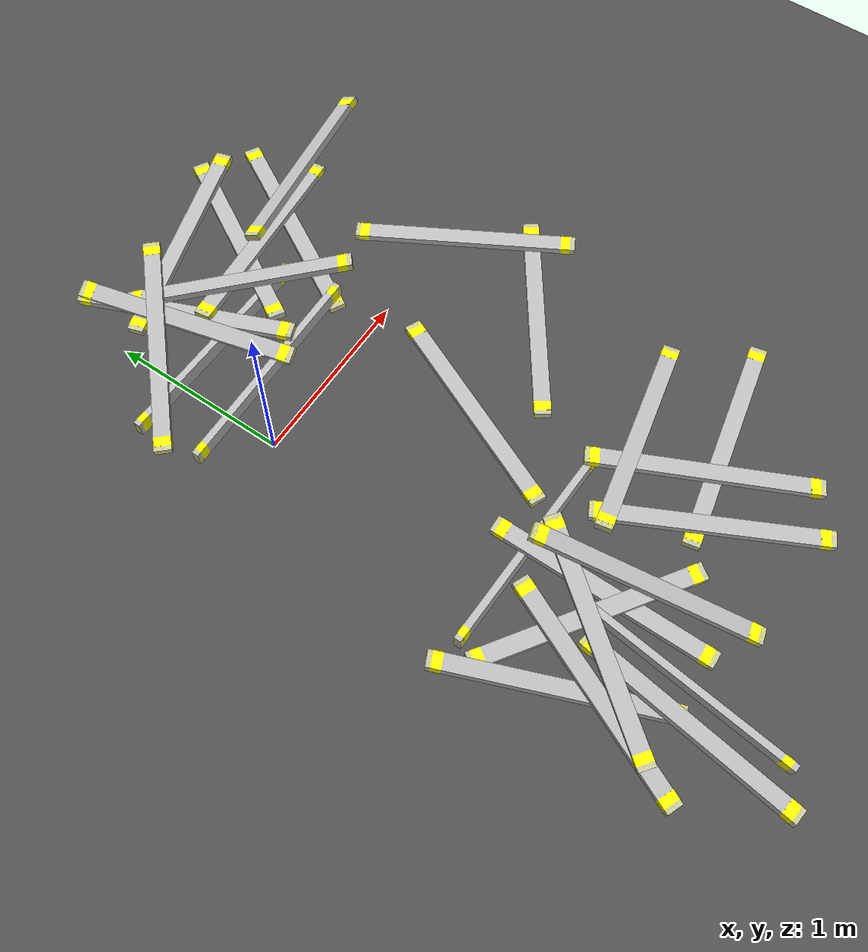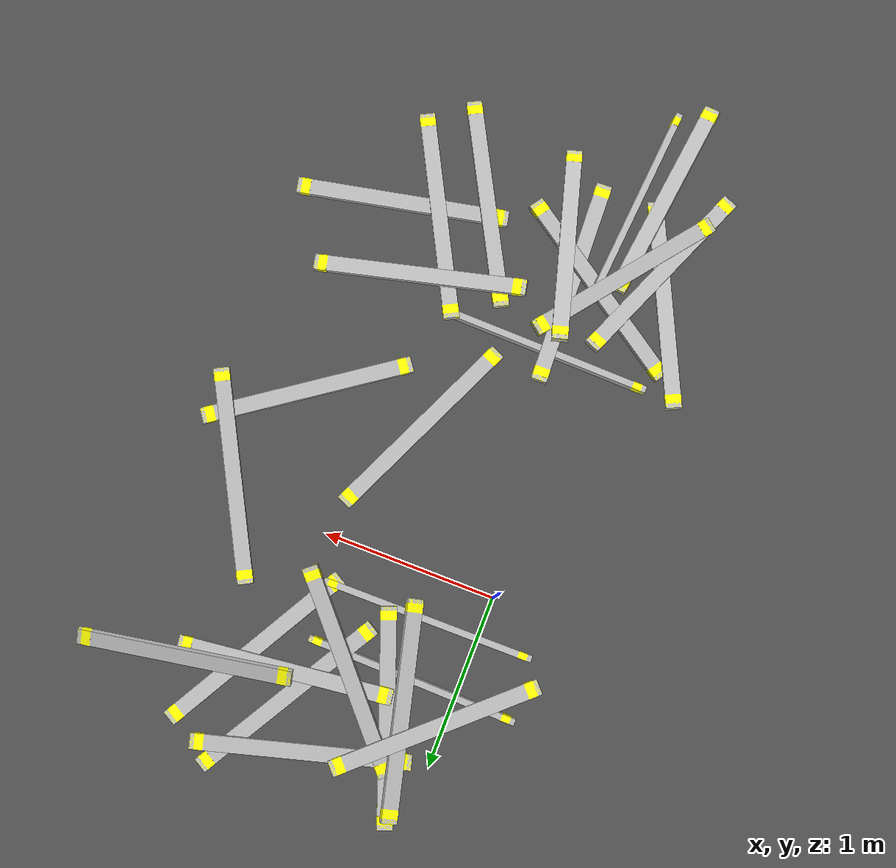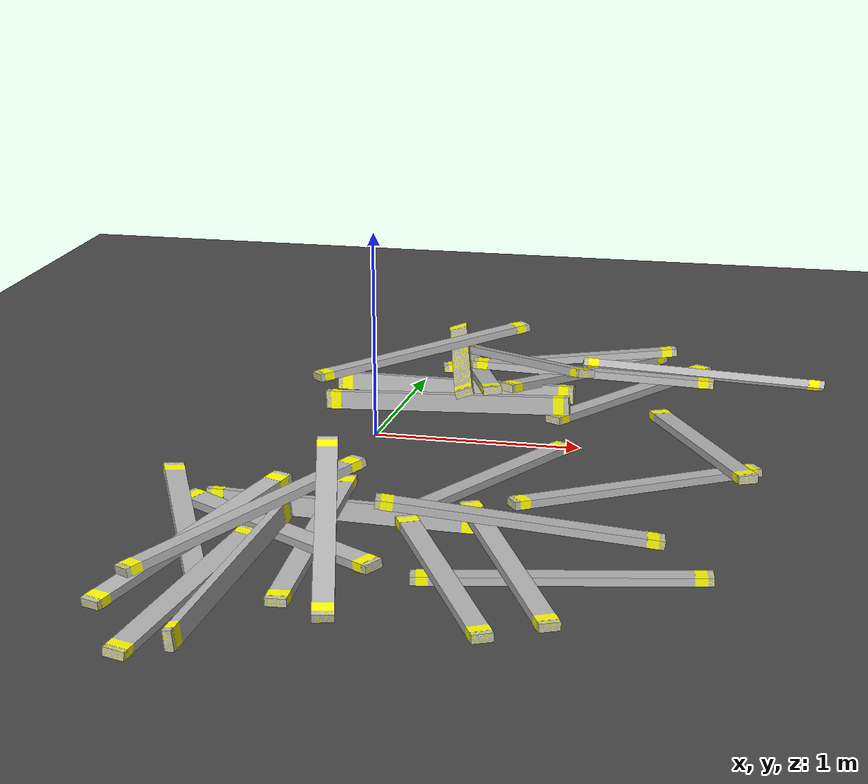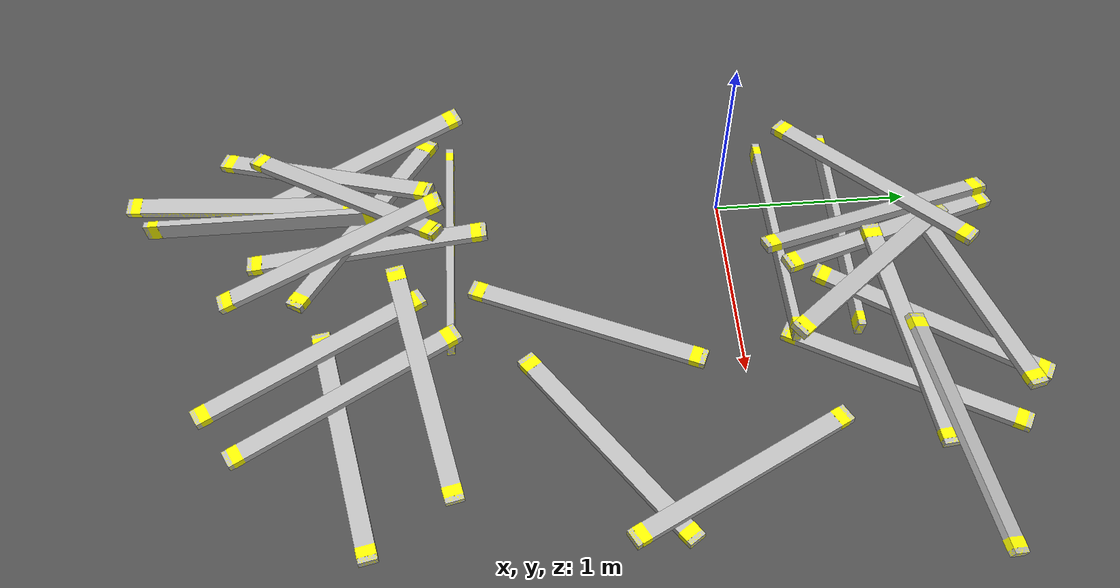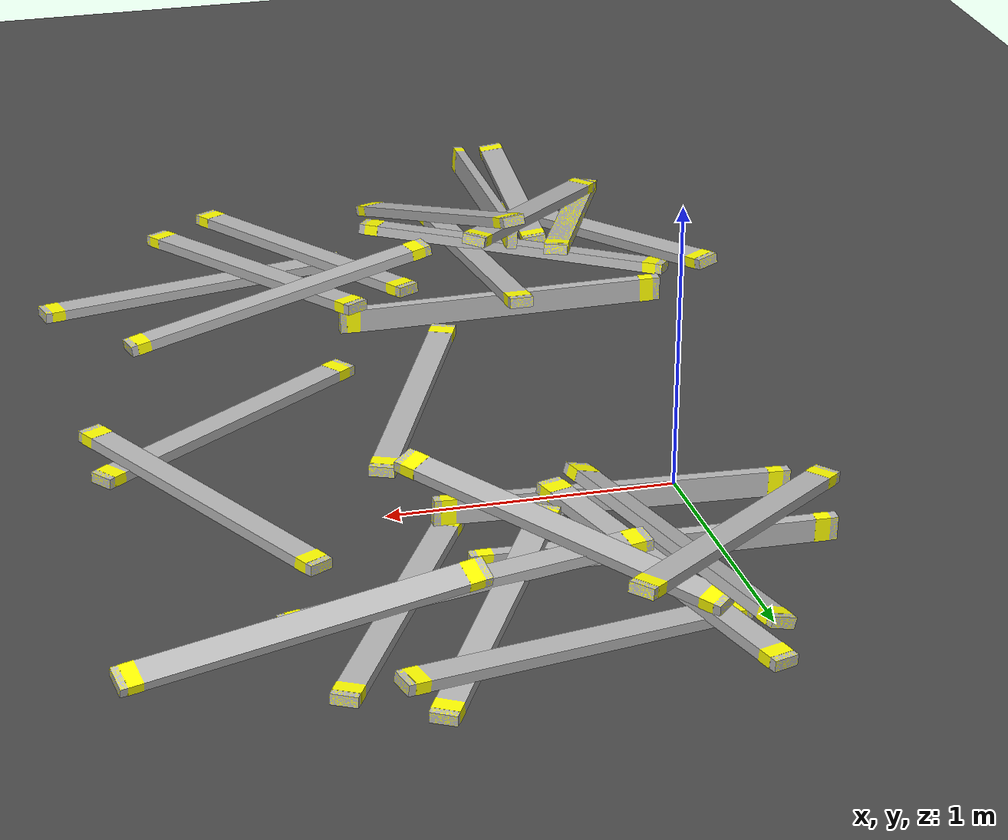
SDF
<sdf version="1.6">
 <world name="default">
  <model name="ground_plane">
   <static>1</static>
   <link name="link">
    <collision name="collision">
     <geometry><plane><normal>0 0 1</normal><size>100 100</size></plane></geometry>
     <surface><friction><ode><mu>100</mu><mu2>50</mu2></ode></friction></surface>
    </collision>
    <visual name="visual">
     <cast_shadows>0</cast_shadows>
     <geometry><plane><normal>0 0 1</normal><size>100 100</size></plane></geometry>
     <material>
      <script><uri>file://media/materials/scripts/gazebo.material</uri><name>Gazebo/Grey</name></script>
     </material>
    </visual>
   </link>
  </model>
  <model name="asphalt_plane">
   <static>1</static>
   <link name="link">
    <collision name="collision"><geometry><box><size>20 20 0.1</size></box></geometry></collision>
    <visual name="visual">
     <cast_shadows>0</cast_shadows>
     <geometry><box><size>20 20 0.1</size></box></geometry>
     <material>
      <script>
       <uri>model://asphalt_plane/materials/scripts</uri>
       <uri>model://asphalt_plane/materials/textures</uri>
       <name>vrc/asphalt</name>
      </script>
     </material>
    </visual>
   </link>
   <pose>0.013797 -0.037077 0 0 -0 0</pose>
  </model>
  <model name="lumber_2x4x48">
   <link name="link">
    <inertial>
     <mass>1.4111</mass>
     <inertia><ixx>0.0011</ixx><ixy>0</ixy><ixz>0</ixz><iyy>0.1771</iyy><iyz>0</iyz><izz>0.1763</izz></inertia>
    </inertial>
    <collision name="collision">
     <geometry><box><size>1.2192 0.038 0.0888</size></box></geometry>
     <surface>
      <bounce><restitution_coefficient>0.01</restitution_coefficient><threshold>5</threshold></bounce>
      <friction><ode><mu>5</mu><mu2>5</mu2></ode></friction>
      <contact>
       <ode>
        <soft_cfm>0.001</soft_cfm>
        <kp>10000</kp>
        <kd>1000</kd>
        <max_vel>0.01</max_vel>
        <min_depth>0.001</min_depth>
       </ode>
      </contact>
     </surface>
    </collision>
    <visual name="visual">
     <geometry><mesh><uri>model://drc_practice_2x4/meshes/2x4x48.dae</uri><scale>1 1 1</scale></mesh></geometry>
    </visual>
   </link>
   <pose>0.29585 0.246908 0.112093 -0.012282 -0.031437 0.006581</pose>
  </model>
  <model name="lumber_2x4x48_clone_1">
   <link name="link">
    <inertial>
     <mass>1.4111</mass>
     <inertia><ixx>0.0011</ixx><ixy>0</ixy><ixz>0</ixz><iyy>0.1771</iyy><iyz>0</iyz><izz>0.1763</izz></inertia>
    </inertial>
    <collision name="collision">
     <geometry><box><size>1.2192 0.038 0.0888</size></box></geometry>
     <surface>
      <bounce><restitution_coefficient>0.01</restitution_coefficient><threshold>5</threshold></bounce>
      <friction><ode><mu>5</mu><mu2>5</mu2></ode></friction>
      <contact>
       <ode>
        <soft_cfm>0.001</soft_cfm>
        <kp>10000</kp>
        <kd>1000</kd>
        <max_vel>0.01</max_vel>
        <min_depth>0.001</min_depth>
       </ode>
      </contact>
     </surface>
    </collision>
    <visual name="visual">
     <geometry><mesh><uri>model://drc_practice_2x4/meshes/2x4x48.dae</uri><scale>1 1 1</scale></mesh></geometry>
    </visual>
   </link>
   <pose>0.259701 0.58307 0.09062 -0.085679 4.7e-05 -0.019412</pose>
  </model>
  <model name="lumber_2x4x48_clone_3_clone_0">
   <link name="link">
    <inertial>
     <mass>1.4111</mass>
     <inertia><ixx>0.0011</ixx><ixy>0</ixy><ixz>0</ixz><iyy>0.1771</iyy><iyz>0</iyz><izz>0.1763</izz></inertia>
    </inertial>
    <collision name="collision">
     <geometry><box><size>1.2192 0.038 0.0888</size></box></geometry>
     <surface>
      <bounce><restitution_coefficient>0.01</restitution_coefficient><threshold>5</threshold></bounce>
      <friction><ode><mu>5</mu><mu2>5</mu2></ode></friction>
      <contact>
       <ode>
        <soft_cfm>0.001</soft_cfm>
        <kp>10000</kp>
        <kd>1000</kd>
        <max_vel>0.01</max_vel>
        <min_depth>0.001</min_depth>
       </ode>
      </contact>
     </surface>
    </collision>
    <visual name="visual">
     <geometry><mesh><uri>model://drc_practice_2x4/meshes/2x4x48.dae</uri><scale>1 1 1</scale></mesh></geometry>
    </visual>
   </link>
   <pose>0.047335 0.775799 0.217492 1.53158 -0.085243 0.736242</pose>
  </model>
  <model name="lumber_2x4x48_clone_3_clone_0_clone_0_clone_0">
   <link name="link">
    <inertial>
     <mass>1.4111</mass>
     <inertia><ixx>0.0011</ixx><ixy>0</ixy><ixz>0</ixz><iyy>0.1771</iyy><iyz>0</iyz><izz>0.1763</izz></inertia>
    </inertial>
    <collision name="collision">
     <geometry><box><size>1.2192 0.038 0.0888</size></box></geometry>
     <surface>
      <bounce><restitution_coefficient>0.01</restitution_coefficient><threshold>5</threshold></bounce>
      <friction><ode><mu>5</mu><mu2>5</mu2></ode></friction>
      <contact>
       <ode>
        <soft_cfm>0.001</soft_cfm>
        <kp>10000</kp>
        <kd>1000</kd>
        <max_vel>0.01</max_vel>
        <min_depth>0.001</min_depth>
       </ode>
      </contact>
     </surface>
    </collision>
    <visual name="visual">
     <geometry><mesh><uri>model://drc_practice_2x4/meshes/2x4x48.dae</uri><scale>1 1 1</scale></mesh></geometry>
    </visual>
   </link>
   <pose>0.064118 -1.82445 0.150234 1.45208 0.00049 2.5477</pose>
  </model>
  <model name="lumber_2x4x48_clone_0_clone_0">
   <link name="link">
    <inertial>
     <mass>1.4111</mass>
     <inertia><ixx>0.0011</ixx><ixy>0</ixy><ixz>0</ixz><iyy>0.1771</iyy><iyz>0</iyz><izz>0.1763</izz></inertia>
    </inertial>
    <collision name="collision">
     <geometry><box><size>1.2192 0.038 0.0888</size></box></geometry>
     <surface>
      <bounce><restitution_coefficient>0.01</restitution_coefficient><threshold>5</threshold></bounce>
      <friction><ode><mu>5</mu><mu2>5</mu2></ode></friction>
      <contact>
       <ode>
        <soft_cfm>0.001</soft_cfm>
        <kp>10000</kp>
        <kd>1000</kd>
        <max_vel>0.01</max_vel>
        <min_depth>0.001</min_depth>
       </ode>
      </contact>
     </surface>
    </collision>
    <visual name="visual">
     <geometry><mesh><uri>model://drc_practice_2x4/meshes/2x4x48.dae</uri><scale>1 1 1</scale></mesh></geometry>
    </visual>
   </link>
   <pose>0.225786 -1.39994 0.10392 -0.024248 0.020138 -0.022762</pose>
  </model>
  <model name="lumber_2x4x48_clone_3_clone_0_clone_1_clone_clone">
   <link name="link">
    <inertial>
     <mass>1.4111</mass>
     <inertia><ixx>0.0011</ixx><ixy>0</ixy><ixz>0</ixz><iyy>0.1771</iyy><iyz>0</iyz><izz>0.1763</izz></inertia>
    </inertial>
    <collision name="collision">
     <geometry><box><size>1.2192 0.038 0.0888</size></box></geometry>
     <surface>
      <bounce><restitution_coefficient>0.01</restitution_coefficient><threshold>5</threshold></bounce>
      <friction><ode><mu>5</mu><mu2>5</mu2></ode></friction>
      <contact>
       <ode>
        <soft_cfm>0.001</soft_cfm>
        <kp>10000</kp>
        <kd>1000</kd>
        <max_vel>0.01</max_vel>
        <min_depth>0.001</min_depth>
       </ode>
      </contact>
     </surface>
    </collision>
    <visual name="visual">
     <geometry><mesh><uri>model://drc_practice_2x4/meshes/2x4x48.dae</uri><scale>1 1 1</scale></mesh></geometry>
    </visual>
   </link>
   <pose>0.036025 -2.34756 0.156878 -0.07363 -0.10351 1.49005</pose>
  </model>
  <model name="lumber_2x4x48_clone_3_clone_0_clone_clone_0">
   <link name="link">
    <inertial>
     <mass>1.4111</mass>
     <inertia><ixx>0.0011</ixx><ixy>0</ixy><ixz>0</ixz><iyy>0.1771</iyy><iyz>0</iyz><izz>0.1763</izz></inertia>
    </inertial>
    <collision name="collision">
     <geometry><box><size>1.2192 0.038 0.0888</size></box></geometry>
     <surface>
      <bounce><restitution_coefficient>0.01</restitution_coefficient><threshold>5</threshold></bounce>
      <friction><ode><mu>5</mu><mu2>5</mu2></ode></friction>
      <contact>
       <ode>
        <soft_cfm>0.001</soft_cfm>
        <kp>10000</kp>
        <kd>1000</kd>
        <max_vel>0.01</max_vel>
        <min_depth>0.001</min_depth>
       </ode>
      </contact>
     </surface>
    </collision>
    <visual name="visual">
     <geometry><mesh><uri>model://drc_practice_2x4/meshes/2x4x48.dae</uri><scale>1 1 1</scale></mesh></geometry>
    </visual>
   </link>
   <pose>1.39218 -0.712525 0.067433 1.56623 0.000289 0.613647</pose>
  </model>
  <model name="lumber_2x4x48_clone_3_clone_0_clone_1_clone_0">
   <link name="link">
    <inertial>
     <mass>1.4111</mass>
     <inertia><ixx>0.0011</ixx><ixy>0</ixy><ixz>0</ixz><iyy>0.1771</iyy><iyz>0</iyz><izz>0.1763</izz></inertia>
    </inertial>
    <collision name="collision">
     <geometry><box><size>1.2192 0.038 0.0888</size></box></geometry>
     <surface>
      <bounce><restitution_coefficient>0.01</restitution_coefficient><threshold>5</threshold></bounce>
      <friction><ode><mu>5</mu><mu2>5</mu2></ode></friction>
      <contact>
       <ode>
        <soft_cfm>0.001</soft_cfm>
        <kp>10000</kp>
        <kd>1000</kd>
        <max_vel>0.01</max_vel>
        <min_depth>0.001</min_depth>
       </ode>
      </contact>
     </surface>
    </collision>
    <visual name="visual">
     <geometry><mesh><uri>model://drc_practice_2x4/meshes/2x4x48.dae</uri><scale>1 1 1</scale></mesh></geometry>
    </visual>
   </link>
   <pose>0.250581 0.756664 0.190247 1.27893 -0.005552 1.81854</pose>
  </model>
  <model name="lumber_2x4x48_clone_3_clone_0_clone_1_clone_1">
   <link name="link">
    <inertial>
     <mass>1.4111</mass>
     <inertia><ixx>0.0011</ixx><ixy>0</ixy><ixz>0</ixz><iyy>0.1771</iyy><iyz>0</iyz><izz>0.1763</izz></inertia>
    </inertial>
    <collision name="collision">
     <geometry><box><size>1.2192 0.038 0.0888</size></box></geometry>
     <surface>
      <bounce><restitution_coefficient>0.01</restitution_coefficient><threshold>5</threshold></bounce>
      <friction><ode><mu>5</mu><mu2>5</mu2></ode></friction>
      <contact>
       <ode>
        <soft_cfm>0.001</soft_cfm>
        <kp>10000</kp>
        <kd>1000</kd>
        <max_vel>0.01</max_vel>
        <min_depth>0.001</min_depth>
       </ode>
      </contact>
     </surface>
    </collision>
    <visual name="visual">
     <geometry><mesh><uri>model://drc_practice_2x4/meshes/2x4x48.dae</uri><scale>1 1 1</scale></mesh></geometry>
    </visual>
   </link>
   <pose>-0.111914 -2.46318 0.110562 -1.71437 0.060344 -1.69281</pose>
  </model>
  <model name="lumber_2x4x48_clone_3_clone_0_clone_1_clone_2">
   <link name="link">
    <inertial>
     <mass>1.4111</mass>
     <inertia><ixx>0.0011</ixx><ixy>0</ixy><ixz>0</ixz><iyy>0.1771</iyy><iyz>0</iyz><izz>0.1763</izz></inertia>
    </inertial>
    <collision name="collision">
     <geometry><box><size>1.2192 0.038 0.0888</size></box></geometry>
     <surface>
      <bounce><restitution_coefficient>0.01</restitution_coefficient><threshold>5</threshold></bounce>
      <friction><ode><mu>5</mu><mu2>5</mu2></ode></friction>
      <contact>
       <ode>
        <soft_cfm>0.001</soft_cfm>
        <kp>10000</kp>
        <kd>1000</kd>
        <max_vel>0.01</max_vel>
        <min_depth>0.001</min_depth>
       </ode>
      </contact>
     </surface>
    </collision>
    <visual name="visual">
     <geometry><mesh><uri>model://drc_practice_2x4/meshes/2x4x48.dae</uri><scale>1 1 1</scale></mesh></geometry>
    </visual>
   </link>
   <pose>0.217807 -1.81808 0.124817 -1.56243 0.095363 -1.53476</pose>
  </model>
  <model name="lumber_2x4x48_clone_3_clone_0_clone_clone_0_clone_0_clone">
   <link name="link">
    <inertial>
     <mass>1.4111</mass>
     <inertia><ixx>0.0011</ixx><ixy>0</ixy><ixz>0</ixz><iyy>0.1771</iyy><iyz>0</iyz><izz>0.1763</izz></inertia>
    </inertial>
    <collision name="collision">
     <geometry><box><size>1.2192 0.038 0.0888</size></box></geometry>
     <surface>
      <bounce><restitution_coefficient>0.01</restitution_coefficient><threshold>5</threshold></bounce>
      <friction><ode><mu>5</mu><mu2>5</mu2></ode></friction>
      <contact>
       <ode>
        <soft_cfm>0.001</soft_cfm>
        <kp>10000</kp>
        <kd>1000</kd>
        <max_vel>0.01</max_vel>
        <min_depth>0.001</min_depth>
       </ode>
      </contact>
     </surface>
    </collision>
    <visual name="visual">
     <geometry><mesh><uri>model://drc_practice_2x4/meshes/2x4x48.dae</uri><scale>1 1 1</scale></mesh></geometry>
    </visual>
   </link>
   <pose>0.596829 0.665024 0.229327 -1.73511 -0.131309 -0.850062</pose>
  </model>
  <model name="lumber_2x4x48_clone_3_clone_0_clone_clone_0_clone_0_clone_0">
   <link name="link">
    <inertial>
     <mass>1.4111</mass>
     <inertia><ixx>0.0011</ixx><ixy>0</ixy><ixz>0</ixz><iyy>0.1771</iyy><iyz>0</iyz><izz>0.1763</izz></inertia>
    </inertial>
    <collision name="collision">
     <geometry><box><size>1.2192 0.038 0.0888</size></box></geometry>
     <surface>
      <bounce><restitution_coefficient>0.01</restitution_coefficient><threshold>5</threshold></bounce>
      <friction><ode><mu>5</mu><mu2>5</mu2></ode></friction>
      <contact>
       <ode>
        <soft_cfm>0.001</soft_cfm>
        <kp>10000</kp>
        <kd>1000</kd>
        <max_vel>0.01</max_vel>
        <min_depth>0.001</min_depth>
       </ode>
      </contact>
     </surface>
    </collision>
    <visual name="visual">
     <geometry><mesh><uri>model://drc_practice_2x4/meshes/2x4x48.dae</uri><scale>1 1 1</scale></mesh></geometry>
    </visual>
   </link>
   <pose>0.319393 -1.98517 0.243854 -1.58939 0.293469 -1.31319</pose>
  </model>
  <model name="lumber_2x4x48_clone_3_clone_0_clone_clone_0_clone_0_clone_4">
   <link name="link">
    <inertial>
     <mass>1.4111</mass>
     <inertia><ixx>0.0011</ixx><ixy>0</ixy><ixz>0</ixz><iyy>0.1771</iyy><iyz>0</iyz><izz>0.1763</izz></inertia>
    </inertial>
    <collision name="collision">
     <geometry><box><size>1.2192 0.038 0.0888</size></box></geometry>
     <surface>
      <bounce><restitution_coefficient>0.01</restitution_coefficient><threshold>5</threshold></bounce>
      <friction><ode><mu>5</mu><mu2>5</mu2></ode></friction>
      <contact>
       <ode>
        <soft_cfm>0.001</soft_cfm>
        <kp>10000</kp>
        <kd>1000</kd>
        <max_vel>0.01</max_vel>
        <min_depth>0.001</min_depth>
       </ode>
      </contact>
     </surface>
    </collision>
    <visual name="visual">
     <geometry><mesh><uri>model://drc_practice_2x4/meshes/2x4x48.dae</uri><scale>1 1 1</scale></mesh></geometry>
    </visual>
   </link>
   <pose>1.05565 -1.91231 0.112859 -1.57771 0.074404 -1.09096</pose>
  </model>
  <model name="lumber_2x4x48_clone_3_clone_0_clone_clone_0_clone_0_clone_5">
   <link name="link">
    <inertial>
     <mass>1.4111</mass>
     <inertia><ixx>0.0011</ixx><ixy>0</ixy><ixz>0</ixz><iyy>0.1771</iyy><iyz>0</iyz><izz>0.1763</izz></inertia>
    </inertial>
    <collision name="collision">
     <geometry><box><size>1.2192 0.038 0.0888</size></box></geometry>
     <surface>
      <bounce><restitution_coefficient>0.01</restitution_coefficient><threshold>5</threshold></bounce>
      <friction><ode><mu>5</mu><mu2>5</mu2></ode></friction>
      <contact>
       <ode>
        <soft_cfm>0.001</soft_cfm>
        <kp>10000</kp>
        <kd>1000</kd>
        <max_vel>0.01</max_vel>
        <min_depth>0.001</min_depth>
       </ode>
      </contact>
     </surface>
    </collision>
    <visual name="visual">
     <geometry><mesh><uri>model://drc_practice_2x4/meshes/2x4x48.dae</uri><scale>1 1 1</scale></mesh></geometry>
    </visual>
   </link>
   <pose>1.59697 -0.113217 0.090621 -1.56748 -0.03751 -1.08254</pose>
  </model>
  <model name="lumber_2x4x48_clone_3_clone_0_clone_clone_0_clone_0_clone_8">
   <link name="link">
    <inertial>
     <mass>1.4111</mass>
     <inertia><ixx>0.0011</ixx><ixy>0</ixy><ixz>0</ixz><iyy>0.1771</iyy><iyz>0</iyz><izz>0.1763</izz></inertia>
    </inertial>
    <collision name="collision">
     <geometry><box><size>1.2192 0.038 0.0888</size></box></geometry>
     <surface>
      <bounce><restitution_coefficient>0.01</restitution_coefficient><threshold>5</threshold></bounce>
      <friction><ode><mu>5</mu><mu2>5</mu2></ode></friction>
      <contact>
       <ode>
        <soft_cfm>0.001</soft_cfm>
        <kp>10000</kp>
        <kd>1000</kd>
        <max_vel>0.01</max_vel>
        <min_depth>0.001</min_depth>
       </ode>
      </contact>
     </surface>
    </collision>
    <visual name="visual">
     <geometry><mesh><uri>model://drc_practice_2x4/meshes/2x4x48.dae</uri><scale>1 1 1</scale></mesh></geometry>
    </visual>
   </link>
   <pose>0.825519 -2.07878 0.101122 1.5869 0.05327 -1.08205</pose>
  </model>
  <model name="lumber_2x4x48_clone_3_clone_0_clone_clone_0_clone_0_clone_0_clone_0">
   <link name="link">
    <inertial>
     <mass>1.4111</mass>
     <inertia><ixx>0.0011</ixx><ixy>0</ixy><ixz>0</ixz><iyy>0.1771</iyy><iyz>0</iyz><izz>0.1763</izz></inertia>
    </inertial>
    <collision name="collision">
     <geometry><box><size>1.2192 0.038 0.0888</size></box></geometry>
     <surface>
      <bounce><restitution_coefficient>0.01</restitution_coefficient><threshold>5</threshold></bounce>
      <friction><ode><mu>5</mu><mu2>5</mu2></ode></friction>
      <contact>
       <ode>
        <soft_cfm>0.001</soft_cfm>
        <kp>10000</kp>
        <kd>1000</kd>
        <max_vel>0.01</max_vel>
        <min_depth>0.001</min_depth>
       </ode>
      </contact>
     </surface>
    </collision>
    <visual name="visual">
     <geometry><mesh><uri>model://drc_practice_2x4/meshes/2x4x48.dae</uri><scale>1 1 1</scale></mesh></geometry>
    </visual>
   </link>
   <pose>-0.312642 -1.88196 0.146258 -1.65236 0.125701 -1.15297</pose>
  </model>
  <model name="lumber_2x4x48_clone_3_clone_0_clone_clone_0_clone_0_clone_10">
   <link name="link">
    <inertial>
     <mass>1.4111</mass>
     <inertia><ixx>0.0011</ixx><ixy>0</ixy><ixz>0</ixz><iyy>0.1771</iyy><iyz>0</iyz><izz>0.1763</izz></inertia>
    </inertial>
    <collision name="collision">
     <geometry><box><size>1.2192 0.038 0.0888</size></box></geometry>
     <surface>
      <bounce><restitution_coefficient>0.01</restitution_coefficient><threshold>5</threshold></bounce>
      <friction><ode><mu>5</mu><mu2>5</mu2></ode></friction>
      <contact>
       <ode>
        <soft_cfm>0.001</soft_cfm>
        <kp>10000</kp>
        <kd>1000</kd>
        <max_vel>0.01</max_vel>
        <min_depth>0.001</min_depth>
       </ode>
      </contact>
     </surface>
    </collision>
    <visual name="visual">
     <geometry><mesh><uri>model://drc_practice_2x4/meshes/2x4x48.dae</uri><scale>1 1 1</scale></mesh></geometry>
    </visual>
   </link>
   <pose>0.312975 0.825289 0.133008 -1.53959 -0.082924 -1.22089</pose>
  </model>
  <model name="lumber_2x4x48_clone_3_clone_0_clone_clone_0_clone_0_clone_11">
   <link name="link">
    <inertial>
     <mass>1.4111</mass>
     <inertia><ixx>0.0011</ixx><ixy>0</ixy><ixz>0</ixz><iyy>0.1771</iyy><iyz>0</iyz><izz>0.1763</izz></inertia>
    </inertial>
    <collision name="collision">
     <geometry><box><size>1.2192 0.038 0.0888</size></box></geometry>
     <surface>
      <bounce><restitution_coefficient>0.01</restitution_coefficient><threshold>5</threshold></bounce>
      <friction><ode><mu>5</mu><mu2>5</mu2></ode></friction>
      <contact>
       <ode>
        <soft_cfm>0.001</soft_cfm>
        <kp>10000</kp>
        <kd>1000</kd>
        <max_vel>0.01</max_vel>
        <min_depth>0.001</min_depth>
       </ode>
      </contact>
     </surface>
    </collision>
    <visual name="visual">
     <geometry><mesh><uri>model://drc_practice_2x4/meshes/2x4x48.dae</uri><scale>1 1 1</scale></mesh></geometry>
    </visual>
   </link>
   <pose>-0.236006 -2.03726 0.166892 1.55441 0.163117 -1.95823</pose>
  </model>
  <model name="lumber_2x4x48_clone_3_clone_0_clone_clone_0_clone_0_clone_11_clone">
   <link name="link">
    <inertial>
     <mass>1.4111</mass>
     <inertia><ixx>0.0011</ixx><ixy>0</ixy><ixz>0</ixz><iyy>0.1771</iyy><iyz>0</iyz><izz>0.1763</izz></inertia>
    </inertial>
    <collision name="collision">
     <geometry><box><size>1.2192 0.038 0.0888</size></box></geometry>
     <surface>
      <bounce><restitution_coefficient>0.01</restitution_coefficient><threshold>5</threshold></bounce>
      <friction><ode><mu>5</mu><mu2>5</mu2></ode></friction>
      <contact>
       <ode>
        <soft_cfm>0.001</soft_cfm>
        <kp>10000</kp>
        <kd>1000</kd>
        <max_vel>0.01</max_vel>
        <min_depth>0.001</min_depth>
       </ode>
      </contact>
     </surface>
    </collision>
    <visual name="visual">
     <geometry><mesh><uri>model://drc_practice_2x4/meshes/2x4x48.dae</uri><scale>1 1 1</scale></mesh></geometry>
    </visual>
   </link>
   <pose>-0.041087 -1.92644 0.244523 1.64891 0.171073 -2.21226</pose>
  </model>
  <model name="lumber_2x4x48_clone_3_clone_0_clone_clone_0_clone_0_clone_11_clone_11">
   <link name="link">
    <inertial>
     <mass>1.4111</mass>
     <inertia><ixx>0.0011</ixx><ixy>0</ixy><ixz>0</ixz><iyy>0.1771</iyy><iyz>0</iyz><izz>0.1763</izz></inertia>
    </inertial>
    <collision name="collision">
     <geometry><box><size>1.2192 0.038 0.0888</size></box></geometry>
     <surface>
      <bounce><restitution_coefficient>0.01</restitution_coefficient><threshold>5</threshold></bounce>
      <friction><ode><mu>5</mu><mu2>5</mu2></ode></friction>
      <contact>
       <ode>
        <soft_cfm>0.001</soft_cfm>
        <kp>10000</kp>
        <kd>1000</kd>
        <max_vel>0.01</max_vel>
        <min_depth>0.001</min_depth>
       </ode>
      </contact>
     </surface>
    </collision>
    <visual name="visual">
     <geometry><mesh><uri>model://drc_practice_2x4/meshes/2x4x48.dae</uri><scale>1 1 1</scale></mesh></geometry>
    </visual>
   </link>
   <pose>0.867143 0.915053 0.114688 1.58719 -0.078759 -2.10168</pose>
  </model>
  <model name="lumber_2x4x48_clone_3_clone_0_clone_clone_0_clone_0_clone_11_clone_12">
   <link name="link">
    <inertial>
     <mass>1.4111</mass>
     <inertia><ixx>0.0011</ixx><ixy>0</ixy><ixz>0</ixz><iyy>0.1771</iyy><iyz>0</iyz><izz>0.1763</izz></inertia>
    </inertial>
    <collision name="collision">
     <geometry><box><size>1.2192 0.038 0.0888</size></box></geometry>
     <surface>
      <bounce><restitution_coefficient>0.01</restitution_coefficient><threshold>5</threshold></bounce>
      <friction><ode><mu>5</mu><mu2>5</mu2></ode></friction>
      <contact>
       <ode>
        <soft_cfm>0.001</soft_cfm>
        <kp>10000</kp>
        <kd>1000</kd>
        <max_vel>0.01</max_vel>
        <min_depth>0.001</min_depth>
       </ode>
      </contact>
     </surface>
    </collision>
    <visual name="visual">
     <geometry><mesh><uri>model://drc_practice_2x4/meshes/2x4x48.dae</uri><scale>1 1 1</scale></mesh></geometry>
    </visual>
   </link>
   <pose>1.13102 0.733793 0.067375 1.57698 0.000435 -2.08469</pose>
  </model>
  <model name="lumber_2x4x48_clone_3_clone_0_clone_clone_0_clone_0_clone_11_clone_13">
   <link name="link">
    <inertial>
     <mass>1.4111</mass>
     <inertia><ixx>0.0011</ixx><ixy>0</ixy><ixz>0</ixz><iyy>0.1771</iyy><iyz>0</iyz><izz>0.1763</izz></inertia>
    </inertial>
    <collision name="collision">
     <geometry><box><size>1.2192 0.038 0.0888</size></box></geometry>
     <surface>
      <bounce><restitution_coefficient>0.01</restitution_coefficient><threshold>5</threshold></bounce>
      <friction><ode><mu>5</mu><mu2>5</mu2></ode></friction>
      <contact>
       <ode>
        <soft_cfm>0.001</soft_cfm>
        <kp>10000</kp>
        <kd>1000</kd>
        <max_vel>0.01</max_vel>
        <min_depth>0.001</min_depth>
       </ode>
      </contact>
     </surface>
    </collision>
    <visual name="visual">
     <geometry><mesh><uri>model://drc_practice_2x4/meshes/2x4x48.dae</uri><scale>1 1 1</scale></mesh></geometry>
    </visual>
   </link>
   <pose>0.717006 -0.749436 0.067655 1.5708 -0 -1.99454</pose>
  </model>
  <model name="lumber_2x4x48_clone_3_clone_0_clone_clone_0_clone_0_clone_11_clone_14_clone_clone">
   <link name="link">
    <inertial>
     <mass>1.4111</mass>
     <inertia><ixx>0.0011</ixx><ixy>0</ixy><ixz>0</ixz><iyy>0.1771</iyy><iyz>0</iyz><izz>0.1763</izz></inertia>
    </inertial>
    <collision name="collision">
     <geometry><box><size>1.2192 0.038 0.0888</size></box></geometry>
     <surface>
      <bounce><restitution_coefficient>0.01</restitution_coefficient><threshold>5</threshold></bounce>
      <friction><ode><mu>5</mu><mu2>5</mu2></ode></friction>
      <contact>
       <ode>
        <soft_cfm>0.001</soft_cfm>
        <kp>10000</kp>
        <kd>1000</kd>
        <max_vel>0.01</max_vel>
        <min_depth>0.001</min_depth>
       </ode>
      </contact>
     </surface>
    </collision>
    <visual name="visual">
     <geometry><mesh><uri>model://drc_practice_2x4/meshes/2x4x48.dae</uri><scale>1 1 1</scale></mesh></geometry>
    </visual>
   </link>
   <pose>1.28119 -1.92032 0.06727 1.56148 0.000487 -2.939</pose>
  </model>
  <model name="lumber_2x4x48_clone_3_clone_0_clone_clone_0_clone_0_clone_11_clone_14_clone_clone_0">
   <link name="link">
    <inertial>
     <mass>1.4111</mass>
     <inertia><ixx>0.0011</ixx><ixy>0</ixy><ixz>0</ixz><iyy>0.1771</iyy><iyz>0</iyz><izz>0.1763</izz></inertia>
    </inertial>
    <collision name="collision">
     <geometry><box><size>1.2192 0.038 0.0888</size></box></geometry>
     <surface>
      <bounce><restitution_coefficient>0.01</restitution_coefficient><threshold>5</threshold></bounce>
      <friction><ode><mu>5</mu><mu2>5</mu2></ode></friction>
      <contact>
       <ode>
        <soft_cfm>0.001</soft_cfm>
        <kp>10000</kp>
        <kd>1000</kd>
        <max_vel>0.01</max_vel>
        <min_depth>0.001</min_depth>
       </ode>
      </contact>
     </surface>
    </collision>
    <visual name="visual">
     <geometry><mesh><uri>model://drc_practice_2x4/meshes/2x4x48.dae</uri><scale>1 1 1</scale></mesh></geometry>
    </visual>
   </link>
   <pose>0.685455 1.16617 0.104228 1.64879 0.05669 -2.87454</pose>
  </model>
  <model name="lumber_2x4x48_clone_3_clone_0_clone_clone_0_clone_0_clone_11_clone_14_clone_clone_1">
   <link name="link">
    <inertial>
     <mass>1.4111</mass>
     <inertia><ixx>0.0011</ixx><ixy>0</ixy><ixz>0</ixz><iyy>0.1771</iyy><iyz>0</iyz><izz>0.1763</izz></inertia>
    </inertial>
    <collision name="collision">
     <geometry><box><size>1.2192 0.038 0.0888</size></box></geometry>
     <surface>
      <bounce><restitution_coefficient>0.01</restitution_coefficient><threshold>5</threshold></bounce>
      <friction><ode><mu>5</mu><mu2>5</mu2></ode></friction>
      <contact>
       <ode>
        <soft_cfm>0.001</soft_cfm>
        <kp>10000</kp>
        <kd>1000</kd>
        <max_vel>0.01</max_vel>
        <min_depth>0.001</min_depth>
       </ode>
      </contact>
     </surface>
    </collision>
    <visual name="visual">
     <geometry><mesh><uri>model://drc_practice_2x4/meshes/2x4x48.dae</uri><scale>1 1 1</scale></mesh></geometry>
    </visual>
   </link>
   <pose>0.927642 0.782737 0.150031 1.62115 -0.064961 -3.02174</pose>
  </model>
  <model name="lumber_2x4x48_clone_3_clone_0_clone_clone_0_clone_0_clone_11_clone_14_clone_clone_6">
   <link name="link">
    <inertial>
     <mass>1.4111</mass>
     <inertia><ixx>0.0011</ixx><ixy>0</ixy><ixz>0</ixz><iyy>0.1771</iyy><iyz>0</iyz><izz>0.1763</izz></inertia>
    </inertial>
    <collision name="collision">
     <geometry><box><size>1.2192 0.038 0.0888</size></box></geometry>
     <surface>
      <bounce><restitution_coefficient>0.01</restitution_coefficient><threshold>5</threshold></bounce>
      <friction><ode><mu>5</mu><mu2>5</mu2></ode></friction>
      <contact>
       <ode>
        <soft_cfm>0.001</soft_cfm>
        <kp>10000</kp>
        <kd>1000</kd>
        <max_vel>0.01</max_vel>
        <min_depth>0.001</min_depth>
       </ode>
      </contact>
     </surface>
    </collision>
    <visual name="visual">
     <geometry><mesh><uri>model://drc_practice_2x4/meshes/2x4x48.dae</uri><scale>1 1 1</scale></mesh></geometry>
    </visual>
   </link>
   <pose>1.03206 -1.54011 0.159464 1.53599 -0.148795 -2.93216</pose>
  </model>
  <model name="lumber_2x4x48_clone_3_clone_0_clone_clone_0_clone_0_clone_11_clone_14_clone_clone_7">
   <link name="link">
    <inertial>
     <mass>1.4111</mass>
     <inertia><ixx>0.0011</ixx><ixy>0</ixy><ixz>0</ixz><iyy>0.1771</iyy><iyz>0</iyz><izz>0.1763</izz></inertia>
    </inertial>
    <collision name="collision">
     <geometry><box><size>1.2192 0.038 0.0888</size></box></geometry>
     <surface>
      <bounce><restitution_coefficient>0.01</restitution_coefficient><threshold>5</threshold></bounce>
      <friction><ode><mu>5</mu><mu2>5</mu2></ode></friction>
      <contact>
       <ode>
        <soft_cfm>0.001</soft_cfm>
        <kp>10000</kp>
        <kd>1000</kd>
        <max_vel>0.01</max_vel>
        <min_depth>0.001</min_depth>
       </ode>
      </contact>
     </surface>
    </collision>
    <visual name="visual">
     <geometry><mesh><uri>model://drc_practice_2x4/meshes/2x4x48.dae</uri><scale>1 1 1</scale></mesh></geometry>
    </visual>
   </link>
   <pose>1.47161 0.913874 0.139843 1.99879 -0.091337 -2.96704</pose>
  </model>
 </world>
</sdf>
